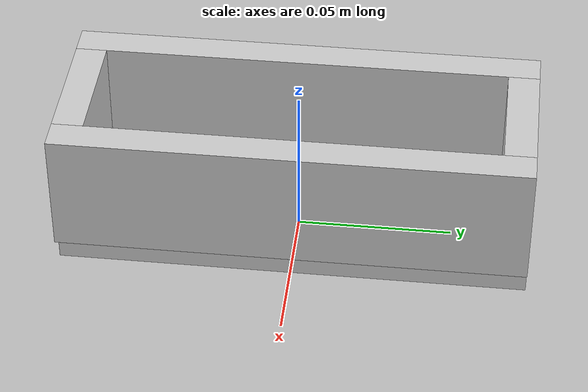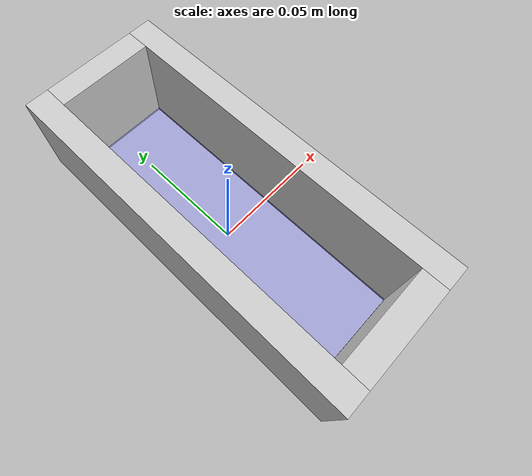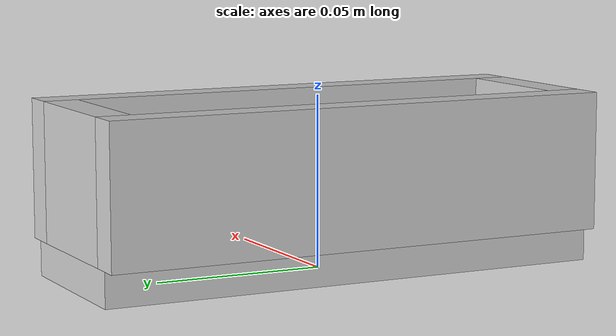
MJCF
<mujoco model="bottle_groove">
  <worldbody>
    <body>
      <body name="object" pos="0 0 0">

          <body name="bottle_groove" pos="0 0 0" quat="1 0 0 0">
              <inertial pos="0 0 0" mass="0.5" diaginertia="1e-3 1e-3 1e-3" />

              <geom name="groove_bottom" type="box" size="0.025 0.075 0.005" pos="0 0 0.005" rgba="0.8 0.8 0.8 1" friction="0.6 0.005 0.001" group="1" conaffinity="1" contype="1"/>

              <geom name="groove_wall_left" type="box" size="0.005 0.075 0.02" pos="-0.025 0 0.03" rgba="0.8 0.8 0.8 1" friction="0.6 0.005 0.001" group="1" conaffinity="1" contype="1"/>
              <geom name="groove_wall_right" type="box" size="0.005 0.075 0.02" pos="0.025 0 0.03" rgba="0.8 0.8 0.8 1" friction="0.6 0.005 0.001" group="1" conaffinity="1" contype="1"/>

              <geom name="groove_wall_front" type="box" size="0.02 0.005 0.02" pos="0 -0.070 0.03" rgba="0.8 0.8 0.8 1" friction="0.6 0.005 0.001" group="1" conaffinity="1" contype="1"/>
              <geom name="groove_wall_back" type="box" size="0.02 0.005 0.02" pos="0 0.070 0.03" rgba="0.8 0.8 0.8 1" friction="0.6 0.005 0.001" group="1" conaffinity="1" contype="1"/>

              <site name="place_region" type="box" size="0.02 0.065 0.001" pos="0 0 0.01" quat="1 0 0 0" rgba="0 0 1 0.2" group="0" />
           </body>
      </body>
        <site rgba="0 0 0 0" size="0.01" pos="0 0 -0.01" quat="1 0 0 0" name="bottom_site"/>
        <site rgba="0 0 0 0" size="0.01" pos="0 0 0.05" quat="1 0 0 0" name="top_site"/>
        <site rgba="0 0 0 0" size="0.01" pos="0.025 0 0" quat="1 0 0 0" name="horizontal_radius_site"/>
      </body>
  </worldbody>
</mujoco>
